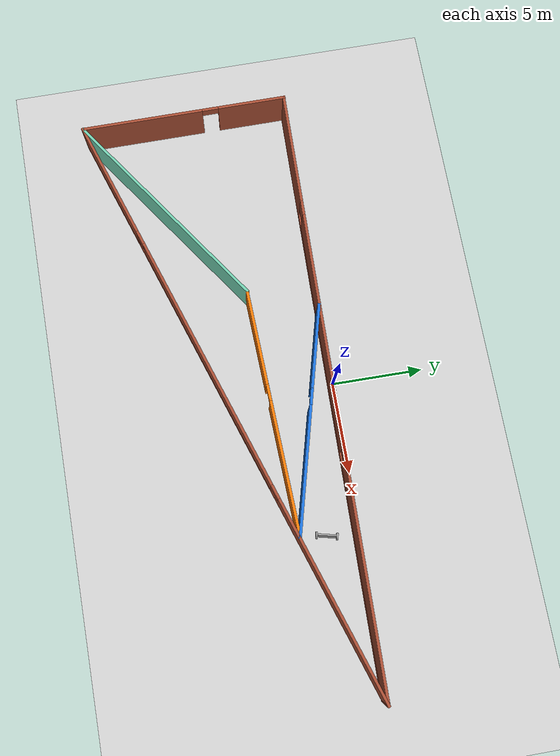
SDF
<sdf version="1.6">
 <world name="default">
  <model name="ground_plane">
   <static>1</static>
   <link name="link">
    <collision name="collision">
     <geometry><plane><normal>0 0 1</normal><size>100 100</size></plane></geometry>
     <surface>
      <contact><collide_bitmask>65535</collide_bitmask></contact>
      <friction><ode><mu>100</mu><mu2>50</mu2></ode></friction>
     </surface>
    </collision>
    <visual name="visual">
     <cast_shadows>0</cast_shadows>
     <geometry><plane><normal>0 0 1</normal><size>100 100</size></plane></geometry>
     <material>
      <script><uri>file://media/materials/scripts/gazebo.material</uri><name>Gazebo/Grey</name></script>
     </material>
    </visual>
   </link>
  </model>
  <model name="Building">
   <pose>0.2954 -5.59685 0 0 -0 0</pose>
   <link name="Wall_0">
    <pose>-16.489 0.014665 0 0 -0 1.57343</pose>
    <visual name="Wall_0_Visual_0">
     <pose>-2.36202 0 1.25 0 -0 0</pose>
     <geometry><box><size>6.79601 0.15 2.5</size></box></geometry>
     <material>
      <script><uri>file://media/materials/scripts/gazebo.material</uri><name>Gazebo/Bricks</name></script>
      <ambient>1 1 1 1</ambient>
     </material>
     <meta><layer>0</layer></meta>
    </visual>
    <collision name="Wall_0_Collision_0">
     <geometry><box><size>6.79601 0.15 2.5</size></box></geometry>
     <pose>-2.36202 0 1.25 0 -0 0</pose>
    </collision>
    <visual name="Wall_0_Visual_1">
     <pose>3.848 0 1.25 0 -0 0</pose>
     <geometry><box><size>3.82403 0.15 2.5</size></box></geometry>
     <material>
      <script><uri>file://media/materials/scripts/gazebo.material</uri><name>Gazebo/Bricks</name></script>
      <ambient>1 1 1 1</ambient>
     </material>
     <meta><layer>0</layer></meta>
    </visual>
    <collision name="Wall_0_Collision_1">
     <geometry><box><size>3.82403 0.15 2.5</size></box></geometry>
     <pose>3.848 0 1.25 0 -0 0</pose>
    </collision>
    <visual name="Wall_0_Visual_2">
     <pose>1.48598 0 2.25 0 -0 0</pose>
     <geometry><box><size>0.9 0.15 0.5</size></box></geometry>
     <material>
      <script><uri>file://media/materials/scripts/gazebo.material</uri><name>Gazebo/Bricks</name></script>
      <ambient>1 1 1 1</ambient>
     </material>
     <meta><layer>0</layer></meta>
    </visual>
    <collision name="Wall_0_Collision_2">
     <geometry><box><size>0.9 0.15 0.5</size></box></geometry>
     <pose>1.48598 0 2.25 0 -0 0</pose>
    </collision>
   </link>
   <link name="Wall_1">
    <pose>-0.009033 5.36466 0 0 -0 -0.0197</pose>
    <visual name="Wall_1_Visual_0">
     <pose>-13.3962 0 1.25 0 -0 0</pose>
     <geometry><box><size>6.35403 0.15 2.5</size></box></geometry>
     <material>
      <script><uri>file://media/materials/scripts/gazebo.material</uri><name>Gazebo/Bricks</name></script>
      <ambient>1 1 1 1</ambient>
     </material>
     <meta><layer>0</layer></meta>
    </visual>
    <collision name="Wall_1_Collision_0">
     <geometry><box><size>6.35403 0.15 2.5</size></box></geometry>
     <pose>-13.3962 0 1.25 0 -0 0</pose>
    </collision>
    <visual name="Wall_1_Visual_1">
     <pose>3.17701 0 0.25 0 -0 0</pose>
     <geometry><box><size>26.7924 0.15 0.5</size></box></geometry>
     <material>
      <script><uri>file://media/materials/scripts/gazebo.material</uri><name>Gazebo/Bricks</name></script>
      <ambient>1 1 1 1</ambient>
     </material>
     <meta><layer>0</layer></meta>
    </visual>
    <collision name="Wall_1_Collision_1">
     <geometry><box><size>26.7924 0.15 0.5</size></box></geometry>
     <pose>3.17701 0 0.25 0 -0 0</pose>
    </collision>
    <visual name="Wall_1_Visual_2">
     <pose>-2.92581 0 1.5 0 -0 0</pose>
     <geometry><box><size>12.9867 0.15 2</size></box></geometry>
     <material>
      <script><uri>file://media/materials/scripts/gazebo.material</uri><name>Gazebo/Bricks</name></script>
      <ambient>1 1 1 1</ambient>
     </material>
     <meta><layer>0</layer></meta>
    </visual>
    <collision name="Wall_1_Collision_2">
     <geometry><box><size>12.9867 0.15 2</size></box></geometry>
     <pose>-2.92581 0 1.5 0 -0 0</pose>
    </collision>
    <visual name="Wall_1_Visual_3">
     <pose>10.4704 0 1.5 0 -0 0</pose>
     <geometry><box><size>12.2057 0.15 2</size></box></geometry>
     <material>
      <script><uri>file://media/materials/scripts/gazebo.material</uri><name>Gazebo/Bricks</name></script>
      <ambient>1 1 1 1</ambient>
     </material>
     <meta><layer>0</layer></meta>
    </visual>
    <collision name="Wall_1_Collision_3">
     <geometry><box><size>12.2057 0.15 2</size></box></geometry>
     <pose>10.4704 0 1.5 0 -0 0</pose>
    </collision>
    <visual name="Wall_1_Visual_4">
     <pose>-9.81917 0 1.9 0 -0 0</pose>
     <geometry><box><size>0.8 0.15 1.2</size></box></geometry>
     <material>
      <script><uri>file://media/materials/scripts/gazebo.material</uri><name>Gazebo/Bricks</name></script>
      <ambient>1 1 1 1</ambient>
     </material>
     <meta><layer>0</layer></meta>
    </visual>
    <collision name="Wall_1_Collision_4">
     <geometry><box><size>0.8 0.15 1.2</size></box></geometry>
     <pose>-9.81917 0 1.9 0 -0 0</pose>
    </collision>
    <visual name="Wall_1_Visual_5">
     <pose>3.96754 0 1.9 0 -0 0</pose>
     <geometry><box><size>0.8 0.15 1.2</size></box></geometry>
     <material>
      <script><uri>file://media/materials/scripts/gazebo.material</uri><name>Gazebo/Bricks</name></script>
      <ambient>1 1 1 1</ambient>
     </material>
     <meta><layer>0</layer></meta>
    </visual>
    <collision name="Wall_1_Collision_5">
     <geometry><box><size>0.8 0.15 1.2</size></box></geometry>
     <pose>3.96754 0 1.9 0 -0 0</pose>
    </collision>
   </link>
   <link name="Wall_2">
    <pose>0.000967 -0.315335 0 0 -0 -2.82696</pose>
    <visual name="Wall_2_Visual_0">
     <pose>-11.6503 0 1.25 0 -0 0</pose>
     <geometry><box><size>11.5215 0.15 2.5</size></box></geometry>
     <material>
      <script><uri>file://media/materials/scripts/gazebo.material</uri><name>Gazebo/Bricks</name></script>
      <ambient>1 1 1 1</ambient>
     </material>
     <meta><layer>0</layer></meta>
    </visual>
    <collision name="Wall_2_Collision_0">
     <geometry><box><size>11.5215 0.15 2.5</size></box></geometry>
     <pose>-11.6503 0 1.25 0 -0 0</pose>
    </collision>
    <visual name="Wall_2_Visual_1">
     <pose>5.76077 0 0.25 0 -0 0</pose>
     <geometry><box><size>23.3006 0.15 0.5</size></box></geometry>
     <material>
      <script><uri>file://media/materials/scripts/gazebo.material</uri><name>Gazebo/Bricks</name></script>
      <ambient>1 1 1 1</ambient>
     </material>
     <meta><layer>0</layer></meta>
    </visual>
    <collision name="Wall_2_Collision_1">
     <geometry><box><size>23.3006 0.15 0.5</size></box></geometry>
     <pose>5.76077 0 0.25 0 -0 0</pose>
    </collision>
    <visual name="Wall_2_Visual_2">
     <pose>2.31914 0 1.5 0 -0 0</pose>
     <geometry><box><size>14.8173 0.15 2</size></box></geometry>
     <material>
      <script><uri>file://media/materials/scripts/gazebo.material</uri><name>Gazebo/Bricks</name></script>
      <ambient>1 1 1 1</ambient>
     </material>
     <meta><layer>0</layer></meta>
    </visual>
    <collision name="Wall_2_Collision_2">
     <geometry><box><size>14.8173 0.15 2</size></box></geometry>
     <pose>2.31914 0 1.5 0 -0 0</pose>
    </collision>
    <visual name="Wall_2_Visual_3">
     <pose>13.9694 0 1.5 0 -0 0</pose>
     <geometry><box><size>6.88326 0.15 2</size></box></geometry>
     <material>
      <script><uri>file://media/materials/scripts/gazebo.material</uri><name>Gazebo/Bricks</name></script>
      <ambient>1 1 1 1</ambient>
     </material>
     <meta><layer>0</layer></meta>
    </visual>
    <collision name="Wall_2_Collision_3">
     <geometry><box><size>6.88326 0.15 2</size></box></geometry>
     <pose>13.9694 0 1.5 0 -0 0</pose>
    </collision>
    <visual name="Wall_2_Visual_4">
     <pose>-5.48951 0 1.9 0 -0 0</pose>
     <geometry><box><size>0.8 0.15 1.2</size></box></geometry>
     <material>
      <script><uri>file://media/materials/scripts/gazebo.material</uri><name>Gazebo/Bricks</name></script>
      <ambient>1 1 1 1</ambient>
     </material>
     <meta><layer>0</layer></meta>
    </visual>
    <collision name="Wall_2_Collision_4">
     <geometry><box><size>0.8 0.15 1.2</size></box></geometry>
     <pose>-5.48951 0 1.9 0 -0 0</pose>
    </collision>
    <visual name="Wall_2_Visual_5">
     <pose>10.1278 0 1.9 0 -0 0</pose>
     <geometry><box><size>0.8 0.15 1.2</size></box></geometry>
     <material>
      <script><uri>file://media/materials/scripts/gazebo.material</uri><name>Gazebo/Bricks</name></script>
      <ambient>1 1 1 1</ambient>
     </material>
     <meta><layer>0</layer></meta>
    </visual>
    <collision name="Wall_2_Collision_5">
     <geometry><box><size>0.8 0.15 1.2</size></box></geometry>
     <pose>10.1278 0 1.9 0 -0 0</pose>
    </collision>
   </link>
   <link name="Wall_3">
    <collision name="Wall_3_Collision">
     <geometry><box><size>13.2734 0.15 2.5</size></box></geometry>
     <pose>0 0 1.25 0 -0 0</pose>
    </collision>
    <visual name="Wall_3_Visual">
     <pose>0 0 1.25 0 -0 0</pose>
     <geometry><box><size>13.2734 0.15 2.5</size></box></geometry>
     <material>
      <script><uri>file://media/materials/scripts/gazebo.material</uri><name>Gazebo/Grey</name></script>
      <ambient>0.435294 0.796078 0.67451 1</ambient>
     </material>
     <meta><layer>0</layer></meta>
    </visual>
    <pose>-11.0648 -1.95606 0 0 -0 0.60171</pose>
   </link>
   <link name="Wall_4">
    <pose>1.02457 1.99269 0 0 -0 0.035086</pose>
    <visual name="Wall_4_Visual_0">
     <pose>-4.10049 0 1.25 0 -0 0</pose>
     <geometry><box><size>5.31733 0.15 2.5</size></box></geometry>
     <material>
      <script><uri>file://media/materials/scripts/gazebo.material</uri><name>Gazebo/Grey</name></script>
      <ambient>0.996078 0.47451 0.0196078 1</ambient>
     </material>
     <meta><layer>0</layer></meta>
    </visual>
    <collision name="Wall_4_Collision_0">
     <geometry><box><size>5.31733 0.15 2.5</size></box></geometry>
     <pose>-4.10049 0 1.25 0 -0 0</pose>
    </collision>
    <visual name="Wall_4_Visual_1">
     <pose>3.10866 0 1.25 0 -0 0</pose>
     <geometry><box><size>7.30099 0.15 2.5</size></box></geometry>
     <material>
      <script><uri>file://media/materials/scripts/gazebo.material</uri><name>Gazebo/Grey</name></script>
      <ambient>0.996078 0.47451 0.0196078 1</ambient>
     </material>
     <meta><layer>0</layer></meta>
    </visual>
    <collision name="Wall_4_Collision_1">
     <geometry><box><size>7.30099 0.15 2.5</size></box></geometry>
     <pose>3.10866 0 1.25 0 -0 0</pose>
    </collision>
    <visual name="Wall_4_Visual_2">
     <pose>-0.991829 0 2.25 0 -0 0</pose>
     <geometry><box><size>0.9 0.15 0.5</size></box></geometry>
     <material>
      <script><uri>file://media/materials/scripts/gazebo.material</uri><name>Gazebo/Grey</name></script>
      <ambient>0.996078 0.47451 0.0196078 1</ambient>
     </material>
     <meta><layer>0</layer></meta>
    </visual>
    <collision name="Wall_4_Collision_2">
     <geometry><box><size>0.9 0.15 0.5</size></box></geometry>
     <pose>-0.991829 0 2.25 0 -0 0</pose>
    </collision>
   </link>
   <link name="Wall_6">
    <pose>1.74002 3.82537 0 0 -0 2.87979</pose>
    <visual name="Wall_6_Visual_0">
     <pose>-2.76788 0 1.25 0 -0 0</pose>
     <geometry><box><size>6.96425 0.15 2.5</size></box></geometry>
     <material>
      <script><uri>file://media/materials/scripts/gazebo.material</uri><name>Gazebo/Grey</name></script>
      <ambient>0.109804 0.443137 0.847059 1</ambient>
     </material>
     <meta><layer>0</layer></meta>
    </visual>
    <collision name="Wall_6_Collision_0">
     <geometry><box><size>6.96425 0.15 2.5</size></box></geometry>
     <pose>-2.76788 0 1.25 0 -0 0</pose>
    </collision>
    <visual name="Wall_6_Visual_1">
     <pose>3.93213 0 1.25 0 -0 0</pose>
     <geometry><box><size>4.63575 0.15 2.5</size></box></geometry>
     <material>
      <script><uri>file://media/materials/scripts/gazebo.material</uri><name>Gazebo/Grey</name></script>
      <ambient>0.109804 0.443137 0.847059 1</ambient>
     </material>
     <meta><layer>0</layer></meta>
    </visual>
    <collision name="Wall_6_Collision_1">
     <geometry><box><size>4.63575 0.15 2.5</size></box></geometry>
     <pose>3.93213 0 1.25 0 -0 0</pose>
    </collision>
    <visual name="Wall_6_Visual_2">
     <pose>1.16425 0 2.25 0 -0 0</pose>
     <geometry><box><size>0.9 0.15 0.5</size></box></geometry>
     <material>
      <script><uri>file://media/materials/scripts/gazebo.material</uri><name>Gazebo/Grey</name></script>
      <ambient>0.109804 0.443137 0.847059 1</ambient>
     </material>
     <meta><layer>0</layer></meta>
    </visual>
    <collision name="Wall_6_Collision_2">
     <geometry><box><size>0.9 0.15 0.5</size></box></geometry>
     <pose>1.16425 0 2.25 0 -0 0</pose>
    </collision>
   </link>
   <static>1</static>
  </model>
  <model name="twowheelsrobotModel_clone_0">
   <link name="link_0">
    <pose>0 0 0.2 0 -0 0</pose>
    <inertial>
     <mass>1</mass>
     <inertia>
      <ixx>0.166667</ixx>
      <ixy>0</ixy>
      <ixz>0</ixz>
      <iyy>0.166667</iyy>
      <iyz>0</iyz>
      <izz>0.166667</izz>
     </inertia>
    </inertial>
    <visual name="visual">
     <geometry><box><size>0.3 1 0.1</size></box></geometry>
     <material>
      <lighting>1</lighting>
      <script><uri>file://media/materials/scripts/gazebo.material</uri><name>Gazebo/Grey</name></script>
      <shader type="pixel"><normal_map>__default__</normal_map></shader>
      <ambient>0.3 0.3 0.3 1</ambient>
      <diffuse>0.7 0.7 0.7 1</diffuse>
      <specular>0.01 0.01 0.01 1</specular>
      <emissive>0 0 0 1</emissive>
     </material>
    </visual>
    <collision name="collision">
     <geometry><box><size>0.3 1 0.1</size></box></geometry>
     <surface>
      <friction>
       <ode><mu>1</mu><mu2>1</mu2><fdir1>0 0 0</fdir1><slip1>0</slip1><slip2>0</slip2></ode>
       <torsional>
        <coefficient>1</coefficient>
        <patch_radius>0</patch_radius>
        <surface_radius>0</surface_radius>
        <use_patch_radius>1</use_patch_radius>
        <ode><slip>0</slip></ode>
       </torsional>
      </friction>
      <bounce><restitution_coefficient>0</restitution_coefficient><threshold>1e+06</threshold></bounce>
      <contact>
       <collide_without_contact>0</collide_without_contact>
       <collide_without_contact_bitmask>1</collide_without_contact_bitmask>
       <collide_bitmask>1</collide_bitmask>
       <ode>
        <soft_cfm>0</soft_cfm>
        <soft_erp>0.2</soft_erp>
        <kp>1e+13</kp>
        <kd>1</kd>
        <max_vel>0.01</max_vel>
        <min_depth>0</min_depth>
       </ode>
       <bullet>
        <split_impulse>1</split_impulse>
        <split_impulse_penetration_threshold>-0.01</split_impulse_penetration_threshold>
        <soft_cfm>0</soft_cfm>
        <soft_erp>0.2</soft_erp>
        <kp>1e+13</kp>
        <kd>1</kd>
       </bullet>
      </contact>
     </surface>
    </collision>
   </link>
   <link name="link_1">
    <pose>0 -0.550019 0.2 1.5707 -0 0</pose>
    <inertial>
     <mass>1</mass>
     <inertia><ixx>0.145833</ixx><ixy>0</ixy><ixz>0</ixz><iyy>0.145833</iyy><iyz>0</iyz><izz>0.125</izz></inertia>
    </inertial>
    <visual name="visual">
     <geometry><cylinder><radius>0.2</radius><length>0.1</length></cylinder></geometry>
     <material>
      <lighting>1</lighting>
      <script><uri>file://media/materials/scripts/gazebo.material</uri><name>Gazebo/Grey</name></script>
      <shader type="pixel"><normal_map>__default__</normal_map></shader>
      <ambient>0.3 0.3 0.3 1</ambient>
      <diffuse>0.7 0.7 0.7 1</diffuse>
      <specular>0.01 0.01 0.01 1</specular>
      <emissive>0 0 0 1</emissive>
     </material>
    </visual>
    <collision name="collision">
     <geometry><cylinder><radius>0.2</radius><length>0.1</length></cylinder></geometry>
     <surface>
      <friction>
       <ode><mu>1</mu><mu2>1</mu2><fdir1>0 0 0</fdir1><slip1>0</slip1><slip2>0</slip2></ode>
       <torsional>
        <coefficient>1</coefficient>
        <patch_radius>0</patch_radius>
        <surface_radius>0</surface_radius>
        <use_patch_radius>1</use_patch_radius>
        <ode><slip>0</slip></ode>
       </torsional>
      </friction>
      <bounce><restitution_coefficient>0</restitution_coefficient><threshold>1e+06</threshold></bounce>
      <contact>
       <collide_without_contact>0</collide_without_contact>
       <collide_without_contact_bitmask>1</collide_without_contact_bitmask>
       <collide_bitmask>1</collide_bitmask>
       <ode>
        <soft_cfm>0</soft_cfm>
        <soft_erp>0.2</soft_erp>
        <kp>1e+13</kp>
        <kd>1</kd>
        <max_vel>0.01</max_vel>
        <min_depth>0</min_depth>
       </ode>
       <bullet>
        <split_impulse>1</split_impulse>
        <split_impulse_penetration_threshold>-0.01</split_impulse_penetration_threshold>
        <soft_cfm>0</soft_cfm>
        <soft_erp>0.2</soft_erp>
        <kp>1e+13</kp>
        <kd>1</kd>
       </bullet>
      </contact>
     </surface>
    </collision>
   </link>
   <link name="link_1_clone">
    <pose>0 0.550019 0.2 1.5707 -0 0</pose>
    <inertial>
     <mass>1</mass>
     <inertia><ixx>0.145833</ixx><ixy>0</ixy><ixz>0</ixz><iyy>0.145833</iyy><iyz>0</iyz><izz>0.125</izz></inertia>
    </inertial>
    <visual name="visual">
     <geometry><cylinder><radius>0.2</radius><length>0.1</length></cylinder></geometry>
     <material>
      <lighting>1</lighting>
      <script><uri>file://media/materials/scripts/gazebo.material</uri><name>Gazebo/Grey</name></script>
      <shader type="pixel"><normal_map>__default__</normal_map></shader>
      <ambient>0.3 0.3 0.3 1</ambient>
      <diffuse>0.7 0.7 0.7 1</diffuse>
      <specular>0.01 0.01 0.01 1</specular>
      <emissive>0 0 0 1</emissive>
     </material>
    </visual>
    <collision name="collision">
     <geometry><cylinder><radius>0.2</radius><length>0.1</length></cylinder></geometry>
     <surface>
      <friction>
       <ode><mu>1</mu><mu2>1</mu2><fdir1>0 0 0</fdir1><slip1>0</slip1><slip2>0</slip2></ode>
       <torsional>
        <coefficient>1</coefficient>
        <patch_radius>0</patch_radius>
        <surface_radius>0</surface_radius>
        <use_patch_radius>1</use_patch_radius>
        <ode><slip>0</slip></ode>
       </torsional>
      </friction>
      <bounce><restitution_coefficient>0</restitution_coefficient><threshold>1e+06</threshold></bounce>
      <contact>
       <collide_without_contact>0</collide_without_contact>
       <collide_without_contact_bitmask>1</collide_without_contact_bitmask>
       <collide_bitmask>1</collide_bitmask>
       <ode>
        <soft_cfm>0</soft_cfm>
        <soft_erp>0.2</soft_erp>
        <kp>1e+13</kp>
        <kd>1</kd>
        <max_vel>0.01</max_vel>
        <min_depth>0</min_depth>
       </ode>
       <bullet>
        <split_impulse>1</split_impulse>
        <split_impulse_penetration_threshold>-0.01</split_impulse_penetration_threshold>
        <soft_cfm>0</soft_cfm>
        <soft_erp>0.2</soft_erp>
        <kp>1e+13</kp>
        <kd>1</kd>
       </bullet>
      </contact>
     </surface>
    </collision>
   </link>
   <joint name="link_0_JOINT_0" type="revolute">
    <parent>link_0</parent>
    <child>link_1</child>
    <axis>
     <xyz>0 0 1</xyz>
     <limit>
      <lower>-1.79769e+308</lower>
      <upper>1.79769e+308</upper>
      <effort>-1</effort>
      <velocity>-1</velocity>
     </limit>
     <dynamics>
      <spring_reference>0</spring_reference>
      <spring_stiffness>0</spring_stiffness>
      <damping>0</damping>
     </dynamics>
     <use_parent_model_frame>0</use_parent_model_frame>
    </axis>
    <physics>
     <ode><limit><cfm>0</cfm><erp>0.2</erp></limit><suspension><cfm>0</cfm><erp>0.2</erp></suspension></ode>
    </physics>
   </joint>
   <joint name="link_0_JOINT_1" type="revolute">
    <parent>link_0</parent>
    <child>link_1_clone</child>
    <axis>
     <xyz>0 0 1</xyz>
     <limit>
      <lower>-1.79769e+308</lower>
      <upper>1.79769e+308</upper>
      <effort>-1</effort>
      <velocity>-1</velocity>
     </limit>
     <dynamics>
      <spring_reference>0</spring_reference>
      <spring_stiffness>0</spring_stiffness>
      <damping>0</damping>
     </dynamics>
     <use_parent_model_frame>0</use_parent_model_frame>
    </axis>
    <physics>
     <ode><limit><cfm>0</cfm><erp>0.2</erp></limit><suspension><cfm>0</cfm><erp>0.2</erp></suspension></ode>
    </physics>
   </joint>
   <static>0</static>
   <pose>7.8979 -1.80255 0.135153 0 -1.24059 2.9081</pose>
  </model>
 </world>
</sdf>
